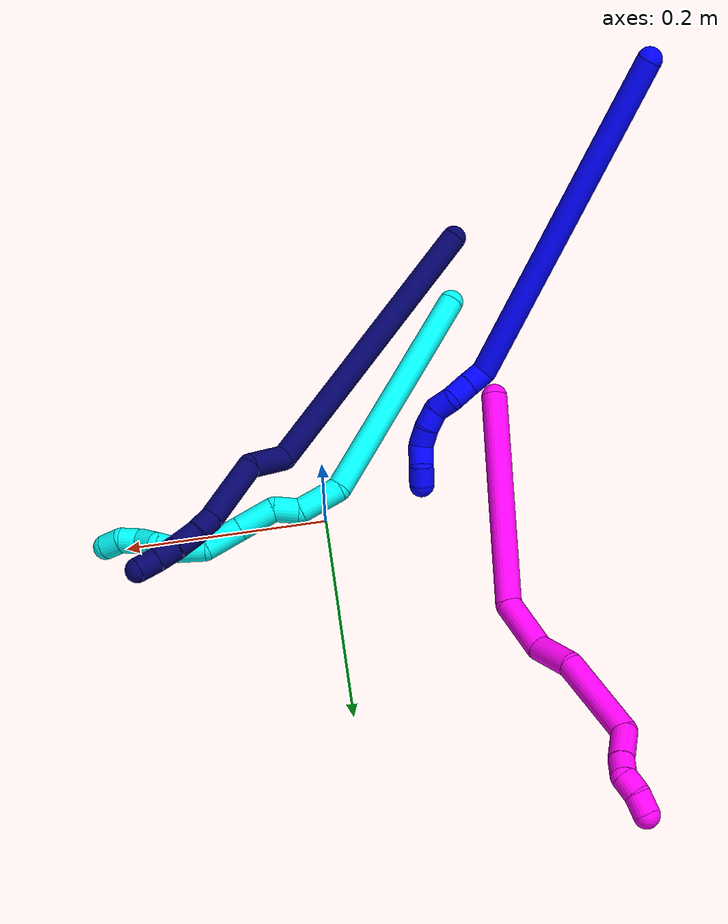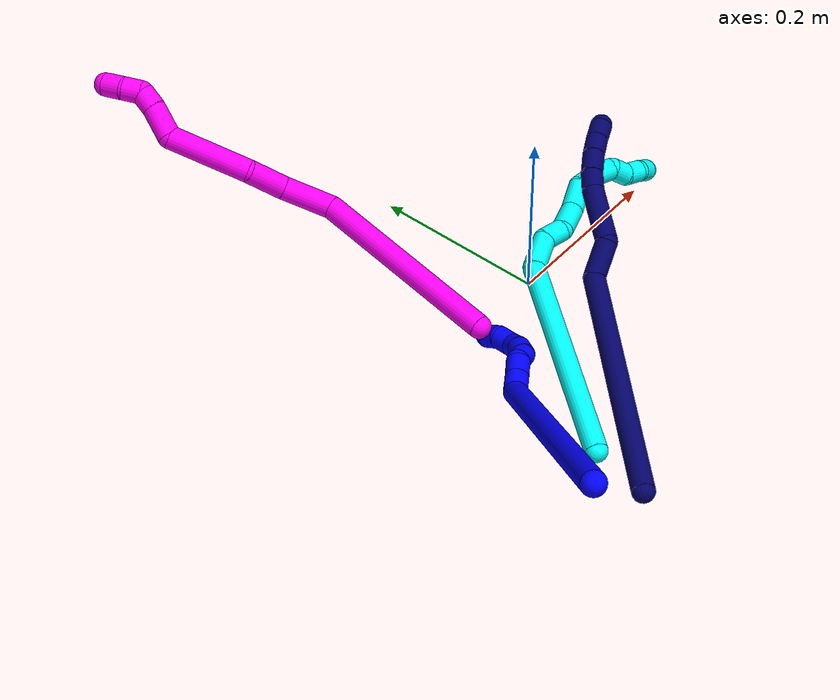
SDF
<sdf version="1.7">
 <world name="default">
  <model name="1">
   <static>0</static>
   <link name="1">
    <collision name="collision-cylinder-e_1_1_4">
     <pose>-0.014514 0.014615 -0.177175 -3.05929 -0.081458 1.56045</pose>
     <geometry><cylinder><radius>0.0125</radius><length>0.356736</length></cylinder></geometry>
     <surface>
      <friction><ode><mu>1.16</mu><mu2>1.16</mu2><slip1>0</slip1><slip2>0</slip2></ode></friction>
      <contact><ode><kp>1e+06</kp><kd>1</kd><max_vel>0</max_vel><min_depth>0.001</min_depth></ode></contact>
     </surface>
    </collision>
    <visual name="visual-cylinder-e_1_1_4">
     <pose>-0.014514 0.014615 -0.177175 -3.05929 -0.081458 1.56045</pose>
     <geometry><cylinder><radius>0.0125</radius><length>0.356736</length></cylinder></geometry>
     <material><ambient>0 0 1 1</ambient></material>
    </visual>
    <collision name="collision-cylinder-e_2_4_5">
     <pose>-0.023512 0.027339 -0.3632 2.9311 0.547267 2.42164</pose>
     <geometry><cylinder><radius>0.0125</radius><length>0.021197</length></cylinder></geometry>
     <surface>
      <friction><ode><mu>1.16</mu><mu2>1.16</mu2><slip1>0</slip1><slip2>0</slip2></ode></friction>
      <contact><ode><kp>1e+06</kp><kd>1</kd><max_vel>0</max_vel><min_depth>0.001</min_depth></ode></contact>
     </surface>
    </collision>
    <visual name="visual-cylinder-e_2_4_5">
     <pose>-0.023512 0.027339 -0.3632 2.9311 0.547267 2.42164</pose>
     <geometry><cylinder><radius>0.0125</radius><length>0.021197</length></cylinder></geometry>
     <material><ambient>0 0 1 1</ambient></material>
    </visual>
    <collision name="collision-cylinder-e_3_5_6">
     <pose>-0.012297 0.023876 -0.381154 2.97053 0.552863 2.55458</pose>
     <geometry><cylinder><radius>0.0125</radius><length>0.021708</length></cylinder></geometry>
     <surface>
      <friction><ode><mu>1.16</mu><mu2>1.16</mu2><slip1>0</slip1><slip2>0</slip2></ode></friction>
      <contact><ode><kp>1e+06</kp><kd>1</kd><max_vel>0</max_vel><min_depth>0.001</min_depth></ode></contact>
     </surface>
    </collision>
    <visual name="visual-cylinder-e_3_5_6">
     <pose>-0.012297 0.023876 -0.381154 2.97053 0.552863 2.55458</pose>
     <geometry><cylinder><radius>0.0125</radius><length>0.021708</length></cylinder></geometry>
     <material><ambient>0 0 1 1</ambient></material>
    </visual>
    <collision name="collision-cylinder-e_4_6_7">
     <pose>-0.006338 0.018581 -0.399632 2.76368 0.025743 0.134416</pose>
     <geometry><cylinder><radius>0.0125</radius><length>0.020182</length></cylinder></geometry>
     <surface>
      <friction><ode><mu>1.16</mu><mu2>1.16</mu2><slip1>0</slip1><slip2>0</slip2></ode></friction>
      <contact><ode><kp>1e+06</kp><kd>1</kd><max_vel>0</max_vel><min_depth>0.001</min_depth></ode></contact>
     </surface>
    </collision>
    <visual name="visual-cylinder-e_4_6_7">
     <pose>-0.006338 0.018581 -0.399632 2.76368 0.025743 0.134416</pose>
     <geometry><cylinder><radius>0.0125</radius><length>0.020182</length></cylinder></geometry>
     <material><ambient>0 0 1 1</ambient></material>
    </visual>
    <collision name="collision-cylinder-e_5_7_8">
     <pose>-0.005213 0.01613 -0.418948 -3.01442 0.086072 -1.18927</pose>
     <geometry><cylinder><radius>0.0125</radius><length>0.020116</length></cylinder></geometry>
     <surface>
      <friction><ode><mu>1.16</mu><mu2>1.16</mu2><slip1>0</slip1><slip2>0</slip2></ode></friction>
      <contact><ode><kp>1e+06</kp><kd>1</kd><max_vel>0</max_vel><min_depth>0.001</min_depth></ode></contact>
     </surface>
    </collision>
    <visual name="visual-cylinder-e_5_7_8">
     <pose>-0.005213 0.01613 -0.418948 -3.01442 0.086072 -1.18927</pose>
     <geometry><cylinder><radius>0.0125</radius><length>0.020116</length></cylinder></geometry>
     <material><ambient>0 0 1 1</ambient></material>
    </visual>
    <collision name="collision-cylinder-e_6_8_9">
     <pose>-0.005509 0.01983 -0.438547 -2.8952 -0.116002 0.876996</pose>
     <geometry><cylinder><radius>0.0125</radius><length>0.020055</length></cylinder></geometry>
     <surface>
      <friction><ode><mu>1.16</mu><mu2>1.16</mu2><slip1>0</slip1><slip2>0</slip2></ode></friction>
      <contact><ode><kp>1e+06</kp><kd>1</kd><max_vel>0</max_vel><min_depth>0.001</min_depth></ode></contact>
     </surface>
    </collision>
    <visual name="visual-cylinder-e_6_8_9">
     <pose>-0.005509 0.01983 -0.438547 -2.8952 -0.116002 0.876996</pose>
     <geometry><cylinder><radius>0.0125</radius><length>0.020055</length></cylinder></geometry>
     <material><ambient>0 0 1 1</ambient></material>
    </visual>
    <collision name="collision-cylinder-e_7_9_10">
     <pose>-0.004209 0.02854 -0.455591 -2.43685 0.248535 -0.654921</pose>
     <geometry><cylinder><radius>0.0125</radius><length>0.020004</length></cylinder></geometry>
     <surface>
      <friction><ode><mu>1.16</mu><mu2>1.16</mu2><slip1>0</slip1><slip2>0</slip2></ode></friction>
      <contact><ode><kp>1e+06</kp><kd>1</kd><max_vel>0</max_vel><min_depth>0.001</min_depth></ode></contact>
     </surface>
    </collision>
    <visual name="visual-cylinder-e_7_9_10">
     <pose>-0.004209 0.02854 -0.455591 -2.43685 0.248535 -0.654921</pose>
     <geometry><cylinder><radius>0.0125</radius><length>0.020004</length></cylinder></geometry>
     <material><ambient>0 0 1 1</ambient></material>
    </visual>
    <collision name="collision-cylinder-e_8_10_2">
     <pose>-0.003389 0.04017 -0.471266 -2.56852 -0.164677 0.54617</pose>
     <geometry><cylinder><radius>0.0125</radius><length>0.020001</length></cylinder></geometry>
     <surface>
      <friction><ode><mu>1.16</mu><mu2>1.16</mu2><slip1>0</slip1><slip2>0</slip2></ode></friction>
      <contact><ode><kp>1e+06</kp><kd>1</kd><max_vel>0</max_vel><min_depth>0.001</min_depth></ode></contact>
     </surface>
    </collision>
    <visual name="visual-cylinder-e_8_10_2">
     <pose>-0.003389 0.04017 -0.471266 -2.56852 -0.164677 0.54617</pose>
     <geometry><cylinder><radius>0.0125</radius><length>0.020001</length></cylinder></geometry>
     <material><ambient>0 0 1 1</ambient></material>
    </visual>
    <collision name="collision-sphere-2">
     <pose>-0.005028 0.045519 -0.479555 0 -0 0</pose>
     <geometry><sphere><radius>0.0125</radius></sphere></geometry>
     <surface>
      <friction><ode><mu>1.16</mu><mu2>1.16</mu2><slip1>0</slip1><slip2>0</slip2></ode></friction>
      <contact><ode><kp>1e+06</kp><kd>1</kd><max_vel>0</max_vel><min_depth>0.001</min_depth></ode></contact>
     </surface>
    </collision>
    <visual name="visual-sphere-2">
     <pose>-0.005028 0.045519 -0.479555 0 -0 0</pose>
     <geometry><sphere><radius>0.0125</radius></sphere></geometry>
     <material><ambient>0 0 1 1</ambient></material>
    </visual>
    <collision name="collision-sphere-10">
     <pose>-0.001749 0.034821 -0.462976 0 -0 0</pose>
     <geometry><sphere><radius>0.0125</radius></sphere></geometry>
     <surface>
      <friction><ode><mu>1.16</mu><mu2>1.16</mu2><slip1>0</slip1><slip2>0</slip2></ode></friction>
      <contact><ode><kp>1e+06</kp><kd>1</kd><max_vel>0</max_vel><min_depth>0.001</min_depth></ode></contact>
     </surface>
    </collision>
    <visual name="visual-sphere-10">
     <pose>-0.001749 0.034821 -0.462976 0 -0 0</pose>
     <geometry><sphere><radius>0.0125</radius></sphere></geometry>
     <material><ambient>0 0 1 1</ambient></material>
    </visual>
    <collision name="collision-sphere-9">
     <pose>-0.00667 0.02226 -0.448206 0 -0 0</pose>
     <geometry><sphere><radius>0.0125</radius></sphere></geometry>
     <surface>
      <friction><ode><mu>1.16</mu><mu2>1.16</mu2><slip1>0</slip1><slip2>0</slip2></ode></friction>
      <contact><ode><kp>1e+06</kp><kd>1</kd><max_vel>0</max_vel><min_depth>0.001</min_depth></ode></contact>
     </surface>
    </collision>
    <visual name="visual-sphere-9">
     <pose>-0.00667 0.02226 -0.448206 0 -0 0</pose>
     <geometry><sphere><radius>0.0125</radius></sphere></geometry>
     <material><ambient>0 0 1 1</ambient></material>
    </visual>
    <collision name="collision-sphere-4">
     <pose>-0.029027 0.02923 -0.354349 0 -0 0</pose>
     <geometry><sphere><radius>0.0125</radius></sphere></geometry>
     <surface>
      <friction><ode><mu>1.16</mu><mu2>1.16</mu2><slip1>0</slip1><slip2>0</slip2></ode></friction>
      <contact><ode><kp>1e+06</kp><kd>1</kd><max_vel>0</max_vel><min_depth>0.001</min_depth></ode></contact>
     </surface>
    </collision>
    <visual name="visual-sphere-4">
     <pose>-0.029027 0.02923 -0.354349 0 -0 0</pose>
     <geometry><sphere><radius>0.0125</radius></sphere></geometry>
     <material><ambient>0 0 1 1</ambient></material>
    </visual>
    <collision name="collision-sphere-1">
     <geometry><sphere><radius>0.0125</radius></sphere></geometry>
     <surface>
      <friction><ode><mu>1.16</mu><mu2>1.16</mu2><slip1>0</slip1><slip2>0</slip2></ode></friction>
      <contact><ode><kp>1e+06</kp><kd>1</kd><max_vel>0</max_vel><min_depth>0.001</min_depth></ode></contact>
     </surface>
    </collision>
    <visual name="visual-sphere-1">
     <geometry><sphere><radius>0.0125</radius></sphere></geometry>
     <material><ambient>0 0 1 1</ambient></material>
    </visual>
    <collision name="collision-sphere-8">
     <pose>-0.004348 0.017401 -0.428888 0 -0 0</pose>
     <geometry><sphere><radius>0.0125</radius></sphere></geometry>
     <surface>
      <friction><ode><mu>1.16</mu><mu2>1.16</mu2><slip1>0</slip1><slip2>0</slip2></ode></friction>
      <contact><ode><kp>1e+06</kp><kd>1</kd><max_vel>0</max_vel><min_depth>0.001</min_depth></ode></contact>
     </surface>
    </collision>
    <visual name="visual-sphere-8">
     <pose>-0.004348 0.017401 -0.428888 0 -0 0</pose>
     <geometry><sphere><radius>0.0125</radius></sphere></geometry>
     <material><ambient>0 0 1 1</ambient></material>
    </visual>
    <collision name="collision-sphere-5">
     <pose>-0.017997 0.025448 -0.372051 0 -0 0</pose>
     <geometry><sphere><radius>0.0125</radius></sphere></geometry>
     <surface>
      <friction><ode><mu>1.16</mu><mu2>1.16</mu2><slip1>0</slip1><slip2>0</slip2></ode></friction>
      <contact><ode><kp>1e+06</kp><kd>1</kd><max_vel>0</max_vel><min_depth>0.001</min_depth></ode></contact>
     </surface>
    </collision>
    <visual name="visual-sphere-5">
     <pose>-0.017997 0.025448 -0.372051 0 -0 0</pose>
     <geometry><sphere><radius>0.0125</radius></sphere></geometry>
     <material><ambient>0 0 1 1</ambient></material>
    </visual>
    <collision name="collision-sphere-6">
     <pose>-0.006597 0.022303 -0.390256 0 -0 0</pose>
     <geometry><sphere><radius>0.0125</radius></sphere></geometry>
     <surface>
      <friction><ode><mu>1.16</mu><mu2>1.16</mu2><slip1>0</slip1><slip2>0</slip2></ode></friction>
      <contact><ode><kp>1e+06</kp><kd>1</kd><max_vel>0</max_vel><min_depth>0.001</min_depth></ode></contact>
     </surface>
    </collision>
    <visual name="visual-sphere-6">
     <pose>-0.006597 0.022303 -0.390256 0 -0 0</pose>
     <geometry><sphere><radius>0.0125</radius></sphere></geometry>
     <material><ambient>0 0 1 1</ambient></material>
    </visual>
    <collision name="collision-sphere-7">
     <pose>-0.006078 0.014859 -0.409008 0 -0 0</pose>
     <geometry><sphere><radius>0.0125</radius></sphere></geometry>
     <surface>
      <friction><ode><mu>1.16</mu><mu2>1.16</mu2><slip1>0</slip1><slip2>0</slip2></ode></friction>
      <contact><ode><kp>1e+06</kp><kd>1</kd><max_vel>0</max_vel><min_depth>0.001</min_depth></ode></contact>
     </surface>
    </collision>
    <visual name="visual-sphere-7">
     <pose>-0.006078 0.014859 -0.409008 0 -0 0</pose>
     <geometry><sphere><radius>0.0125</radius></sphere></geometry>
     <material><ambient>0 0 1 1</ambient></material>
    </visual>
    <inertial>
     <pose>-0.012876 0.017566 -0.246011 0 -0 0</pose>
     <mass>0.5</mass>
     <inertia>
      <ixx>0.003828</ixx>
      <ixy>0</ixy>
      <ixz>0</ixz>
      <iyy>0.003774</iyy>
      <iyz>0</iyz>
      <izz>-4.3e-05</izz>
     </inertia>
    </inertial>
   </link>
   <pose>-0.366342 -0.342227 0.252897 0.05197 -1.05018 0.708383</pose>
  </model>
  <model name="3">
   <static>0</static>
   <link name="3">
    <collision name="collision-cylinder-e_1_1_4">
     <pose>0.028494 0.08128 -0.083223 -2.36801 0.24021 -0.576117</pose>
     <geometry><cylinder><radius>0.0125</radius><length>0.239537</length></cylinder></geometry>
     <surface>
      <friction><ode><mu>1.16</mu><mu2>1.16</mu2><slip1>0</slip1><slip2>0</slip2></ode></friction>
      <contact><ode><kp>1e+06</kp><kd>1</kd><max_vel>0</max_vel><min_depth>0.001</min_depth></ode></contact>
     </surface>
    </collision>
    <visual name="visual-cylinder-e_1_1_4">
     <pose>0.028494 0.08128 -0.083223 -2.36801 0.24021 -0.576117</pose>
     <geometry><cylinder><radius>0.0125</radius><length>0.239537</length></cylinder></geometry>
     <material><ambient>0.003922 1 0.996078 1</ambient></material>
    </visual>
    <collision name="collision-cylinder-e_2_4_5">
     <pose>0.068311 0.167903 -0.185135 -2.86309 0.527493 -2.18409</pose>
     <geometry><cylinder><radius>0.0125</radius><length>0.04499</length></cylinder></geometry>
     <surface>
      <friction><ode><mu>1.16</mu><mu2>1.16</mu2><slip1>0</slip1><slip2>0</slip2></ode></friction>
      <contact><ode><kp>1e+06</kp><kd>1</kd><max_vel>0</max_vel><min_depth>0.001</min_depth></ode></contact>
     </surface>
    </collision>
    <visual name="visual-cylinder-e_2_4_5">
     <pose>0.068311 0.167903 -0.185135 -2.86309 0.527493 -2.18409</pose>
     <geometry><cylinder><radius>0.0125</radius><length>0.04499</length></cylinder></geometry>
     <material><ambient>0.003922 1 0.996078 1</ambient></material>
    </visual>
    <collision name="collision-cylinder-e_3_5_6">
     <pose>0.088443 0.169227 -0.211919 2.68067 0.772524 2.09504</pose>
     <geometry><cylinder><radius>0.0125</radius><length>0.025242</length></cylinder></geometry>
     <surface>
      <friction><ode><mu>1.16</mu><mu2>1.16</mu2><slip1>0</slip1><slip2>0</slip2></ode></friction>
      <contact><ode><kp>1e+06</kp><kd>1</kd><max_vel>0</max_vel><min_depth>0.001</min_depth></ode></contact>
     </surface>
    </collision>
    <visual name="visual-cylinder-e_3_5_6">
     <pose>0.088443 0.169227 -0.211919 2.68067 0.772524 2.09504</pose>
     <geometry><cylinder><radius>0.0125</radius><length>0.025242</length></cylinder></geometry>
     <material><ambient>0.003922 1 0.996078 1</ambient></material>
    </visual>
    <collision name="collision-cylinder-e_4_6_7">
     <pose>0.104923 0.167318 -0.237907 -3.02416 0.402522 -2.58054</pose>
     <geometry><cylinder><radius>0.0125</radius><length>0.039164</length></cylinder></geometry>
     <surface>
      <friction><ode><mu>1.16</mu><mu2>1.16</mu2><slip1>0</slip1><slip2>0</slip2></ode></friction>
      <contact><ode><kp>1e+06</kp><kd>1</kd><max_vel>0</max_vel><min_depth>0.001</min_depth></ode></contact>
     </surface>
    </collision>
    <visual name="visual-cylinder-e_4_6_7">
     <pose>0.104923 0.167318 -0.237907 -3.02416 0.402522 -2.58054</pose>
     <geometry><cylinder><radius>0.0125</radius><length>0.039164</length></cylinder></geometry>
     <material><ambient>0.003922 1 0.996078 1</ambient></material>
    </visual>
    <collision name="collision-cylinder-e_5_7_8">
     <pose>0.122689 0.174693 -0.271749 -2.82276 0.541214 -2.09106</pose>
     <geometry><cylinder><radius>0.0125</radius><length>0.039192</length></cylinder></geometry>
     <surface>
      <friction><ode><mu>1.16</mu><mu2>1.16</mu2><slip1>0</slip1><slip2>0</slip2></ode></friction>
      <contact><ode><kp>1e+06</kp><kd>1</kd><max_vel>0</max_vel><min_depth>0.001</min_depth></ode></contact>
     </surface>
    </collision>
    <visual name="visual-cylinder-e_5_7_8">
     <pose>0.122689 0.174693 -0.271749 -2.82276 0.541214 -2.09106</pose>
     <geometry><cylinder><radius>0.0125</radius><length>0.039192</length></cylinder></geometry>
     <material><ambient>0.003922 1 0.996078 1</ambient></material>
    </visual>
    <collision name="collision-cylinder-e_6_8_9">
     <pose>0.141771 0.176955 -0.297695 2.84973 0.710785 2.38749</pose>
     <geometry><cylinder><radius>0.0125</radius><length>0.027547</length></cylinder></geometry>
     <surface>
      <friction><ode><mu>1.16</mu><mu2>1.16</mu2><slip1>0</slip1><slip2>0</slip2></ode></friction>
      <contact><ode><kp>1e+06</kp><kd>1</kd><max_vel>0</max_vel><min_depth>0.001</min_depth></ode></contact>
     </surface>
    </collision>
    <visual name="visual-cylinder-e_6_8_9">
     <pose>0.141771 0.176955 -0.297695 2.84973 0.710785 2.38749</pose>
     <geometry><cylinder><radius>0.0125</radius><length>0.027547</length></cylinder></geometry>
     <material><ambient>0.003922 1 0.996078 1</ambient></material>
    </visual>
    <collision name="collision-cylinder-e_7_9_10">
     <pose>0.158719 0.169394 -0.313248 2.45469 0.836598 1.78663</pose>
     <geometry><cylinder><radius>0.0125</radius><length>0.021451</length></cylinder></geometry>
     <surface>
      <friction><ode><mu>1.16</mu><mu2>1.16</mu2><slip1>0</slip1><slip2>0</slip2></ode></friction>
      <contact><ode><kp>1e+06</kp><kd>1</kd><max_vel>0</max_vel><min_depth>0.001</min_depth></ode></contact>
     </surface>
    </collision>
    <visual name="visual-cylinder-e_7_9_10">
     <pose>0.158719 0.169394 -0.313248 2.45469 0.836598 1.78663</pose>
     <geometry><cylinder><radius>0.0125</radius><length>0.021451</length></cylinder></geometry>
     <material><ambient>0.003922 1 0.996078 1</ambient></material>
    </visual>
    <collision name="collision-cylinder-e_8_10_11">
     <pose>0.168128 0.156344 -0.32602 2.27501 0.129058 0.27757</pose>
     <geometry><cylinder><radius>0.0125</radius><length>0.022475</length></cylinder></geometry>
     <surface>
      <friction><ode><mu>1.16</mu><mu2>1.16</mu2><slip1>0</slip1><slip2>0</slip2></ode></friction>
      <contact><ode><kp>1e+06</kp><kd>1</kd><max_vel>0</max_vel><min_depth>0.001</min_depth></ode></contact>
     </surface>
    </collision>
    <visual name="visual-cylinder-e_8_10_11">
     <pose>0.168128 0.156344 -0.32602 2.27501 0.129058 0.27757</pose>
     <geometry><cylinder><radius>0.0125</radius><length>0.022475</length></cylinder></geometry>
     <material><ambient>0.003922 1 0.996078 1</ambient></material>
    </visual>
    <collision name="collision-cylinder-e_9_11_12">
     <pose>0.174857 0.143334 -0.340528 2.58707 0.551939 1.56588</pose>
     <geometry><cylinder><radius>0.0125</radius><length>0.020149</length></cylinder></geometry>
     <surface>
      <friction><ode><mu>1.16</mu><mu2>1.16</mu2><slip1>0</slip1><slip2>0</slip2></ode></friction>
      <contact><ode><kp>1e+06</kp><kd>1</kd><max_vel>0</max_vel><min_depth>0.001</min_depth></ode></contact>
     </surface>
    </collision>
    <visual name="visual-cylinder-e_9_11_12">
     <pose>0.174857 0.143334 -0.340528 2.58707 0.551939 1.56588</pose>
     <geometry><cylinder><radius>0.0125</radius><length>0.020149</length></cylinder></geometry>
     <material><ambient>0.003922 1 0.996078 1</ambient></material>
    </visual>
    <collision name="collision-cylinder-e_10_12_2">
     <pose>0.181446 0.135566 -0.357322 2.81188 0.129405 0.742771</pose>
     <geometry><cylinder><radius>0.0125</radius><length>0.020252</length></cylinder></geometry>
     <surface>
      <friction><ode><mu>1.16</mu><mu2>1.16</mu2><slip1>0</slip1><slip2>0</slip2></ode></friction>
      <contact><ode><kp>1e+06</kp><kd>1</kd><max_vel>0</max_vel><min_depth>0.001</min_depth></ode></contact>
     </surface>
    </collision>
    <visual name="visual-cylinder-e_10_12_2">
     <pose>0.181446 0.135566 -0.357322 2.81188 0.129405 0.742771</pose>
     <geometry><cylinder><radius>0.0125</radius><length>0.020252</length></cylinder></geometry>
     <material><ambient>0.003922 1 0.996078 1</ambient></material>
    </visual>
    <collision name="collision-sphere-2">
     <pose>0.182753 0.132314 -0.366822 0 -0 0</pose>
     <geometry><sphere><radius>0.0125</radius></sphere></geometry>
     <surface>
      <friction><ode><mu>1.16</mu><mu2>1.16</mu2><slip1>0</slip1><slip2>0</slip2></ode></friction>
      <contact><ode><kp>1e+06</kp><kd>1</kd><max_vel>0</max_vel><min_depth>0.001</min_depth></ode></contact>
     </surface>
    </collision>
    <visual name="visual-sphere-2">
     <pose>0.182753 0.132314 -0.366822 0 -0 0</pose>
     <geometry><sphere><radius>0.0125</radius></sphere></geometry>
     <material><ambient>0.003922 1 0.996078 1</ambient></material>
    </visual>
    <collision name="collision-sphere-12">
     <pose>0.180139 0.138817 -0.347821 0 -0 0</pose>
     <geometry><sphere><radius>0.0125</radius></sphere></geometry>
     <surface>
      <friction><ode><mu>1.16</mu><mu2>1.16</mu2><slip1>0</slip1><slip2>0</slip2></ode></friction>
      <contact><ode><kp>1e+06</kp><kd>1</kd><max_vel>0</max_vel><min_depth>0.001</min_depth></ode></contact>
     </surface>
    </collision>
    <visual name="visual-sphere-12">
     <pose>0.180139 0.138817 -0.347821 0 -0 0</pose>
     <geometry><sphere><radius>0.0125</radius></sphere></geometry>
     <material><ambient>0.003922 1 0.996078 1</ambient></material>
    </visual>
    <collision name="collision-sphere-11">
     <pose>0.169574 0.147851 -0.333235 0 -0 0</pose>
     <geometry><sphere><radius>0.0125</radius></sphere></geometry>
     <surface>
      <friction><ode><mu>1.16</mu><mu2>1.16</mu2><slip1>0</slip1><slip2>0</slip2></ode></friction>
      <contact><ode><kp>1e+06</kp><kd>1</kd><max_vel>0</max_vel><min_depth>0.001</min_depth></ode></contact>
     </surface>
    </collision>
    <visual name="visual-sphere-11">
     <pose>0.169574 0.147851 -0.333235 0 -0 0</pose>
     <geometry><sphere><radius>0.0125</radius></sphere></geometry>
     <material><ambient>0.003922 1 0.996078 1</ambient></material>
    </visual>
    <collision name="collision-sphere-10">
     <pose>0.166682 0.164837 -0.318804 0 -0 0</pose>
     <geometry><sphere><radius>0.0125</radius></sphere></geometry>
     <surface>
      <friction><ode><mu>1.16</mu><mu2>1.16</mu2><slip1>0</slip1><slip2>0</slip2></ode></friction>
      <contact><ode><kp>1e+06</kp><kd>1</kd><max_vel>0</max_vel><min_depth>0.001</min_depth></ode></contact>
     </surface>
    </collision>
    <visual name="visual-sphere-10">
     <pose>0.166682 0.164837 -0.318804 0 -0 0</pose>
     <geometry><sphere><radius>0.0125</radius></sphere></geometry>
     <material><ambient>0.003922 1 0.996078 1</ambient></material>
    </visual>
    <collision name="collision-sphere-9">
     <pose>0.150757 0.173951 -0.307692 0 -0 0</pose>
     <geometry><sphere><radius>0.0125</radius></sphere></geometry>
     <surface>
      <friction><ode><mu>1.16</mu><mu2>1.16</mu2><slip1>0</slip1><slip2>0</slip2></ode></friction>
      <contact><ode><kp>1e+06</kp><kd>1</kd><max_vel>0</max_vel><min_depth>0.001</min_depth></ode></contact>
     </surface>
    </collision>
    <visual name="visual-sphere-9">
     <pose>0.150757 0.173951 -0.307692 0 -0 0</pose>
     <geometry><sphere><radius>0.0125</radius></sphere></geometry>
     <material><ambient>0.003922 1 0.996078 1</ambient></material>
    </visual>
    <collision name="collision-sphere-4">
     <pose>0.056987 0.16256 -0.166447 0 -0 0</pose>
     <geometry><sphere><radius>0.0125</radius></sphere></geometry>
     <surface>
      <friction><ode><mu>1.16</mu><mu2>1.16</mu2><slip1>0</slip1><slip2>0</slip2></ode></friction>
      <contact><ode><kp>1e+06</kp><kd>1</kd><max_vel>0</max_vel><min_depth>0.001</min_depth></ode></contact>
     </surface>
    </collision>
    <visual name="visual-sphere-4">
     <pose>0.056987 0.16256 -0.166447 0 -0 0</pose>
     <geometry><sphere><radius>0.0125</radius></sphere></geometry>
     <material><ambient>0.003922 1 0.996078 1</ambient></material>
    </visual>
    <collision name="collision-sphere-1">
     <geometry><sphere><radius>0.0125</radius></sphere></geometry>
     <surface>
      <friction><ode><mu>1.16</mu><mu2>1.16</mu2><slip1>0</slip1><slip2>0</slip2></ode></friction>
      <contact><ode><kp>1e+06</kp><kd>1</kd><max_vel>0</max_vel><min_depth>0.001</min_depth></ode></contact>
     </surface>
    </collision>
    <visual name="visual-sphere-1">
     <geometry><sphere><radius>0.0125</radius></sphere></geometry>
     <material><ambient>0.003922 1 0.996078 1</ambient></material>
    </visual>
    <collision name="collision-sphere-8">
     <pose>0.132785 0.179958 -0.287699 0 -0 0</pose>
     <geometry><sphere><radius>0.0125</radius></sphere></geometry>
     <surface>
      <friction><ode><mu>1.16</mu><mu2>1.16</mu2><slip1>0</slip1><slip2>0</slip2></ode></friction>
      <contact><ode><kp>1e+06</kp><kd>1</kd><max_vel>0</max_vel><min_depth>0.001</min_depth></ode></contact>
     </surface>
    </collision>
    <visual name="visual-sphere-8">
     <pose>0.132785 0.179958 -0.287699 0 -0 0</pose>
     <geometry><sphere><radius>0.0125</radius></sphere></geometry>
     <material><ambient>0.003922 1 0.996078 1</ambient></material>
    </visual>
    <collision name="collision-sphere-5">
     <pose>0.079634 0.173247 -0.203823 0 -0 0</pose>
     <geometry><sphere><radius>0.0125</radius></sphere></geometry>
     <surface>
      <friction><ode><mu>1.16</mu><mu2>1.16</mu2><slip1>0</slip1><slip2>0</slip2></ode></friction>
      <contact><ode><kp>1e+06</kp><kd>1</kd><max_vel>0</max_vel><min_depth>0.001</min_depth></ode></contact>
     </surface>
    </collision>
    <visual name="visual-sphere-5">
     <pose>0.079634 0.173247 -0.203823 0 -0 0</pose>
     <geometry><sphere><radius>0.0125</radius></sphere></geometry>
     <material><ambient>0.003922 1 0.996078 1</ambient></material>
    </visual>
    <collision name="collision-sphere-6">
     <pose>0.097252 0.165207 -0.220014 0 -0 0</pose>
     <geometry><sphere><radius>0.0125</radius></sphere></geometry>
     <surface>
      <friction><ode><mu>1.16</mu><mu2>1.16</mu2><slip1>0</slip1><slip2>0</slip2></ode></friction>
      <contact><ode><kp>1e+06</kp><kd>1</kd><max_vel>0</max_vel><min_depth>0.001</min_depth></ode></contact>
     </surface>
    </collision>
    <visual name="visual-sphere-6">
     <pose>0.097252 0.165207 -0.220014 0 -0 0</pose>
     <geometry><sphere><radius>0.0125</radius></sphere></geometry>
     <material><ambient>0.003922 1 0.996078 1</ambient></material>
    </visual>
    <collision name="collision-sphere-7">
     <pose>0.112594 0.169429 -0.2558 0 -0 0</pose>
     <geometry><sphere><radius>0.0125</radius></sphere></geometry>
     <surface>
      <friction><ode><mu>1.16</mu><mu2>1.16</mu2><slip1>0</slip1><slip2>0</slip2></ode></friction>
      <contact><ode><kp>1e+06</kp><kd>1</kd><max_vel>0</max_vel><min_depth>0.001</min_depth></ode></contact>
     </surface>
    </collision>
    <visual name="visual-sphere-7">
     <pose>0.112594 0.169429 -0.2558 0 -0 0</pose>
     <geometry><sphere><radius>0.0125</radius></sphere></geometry>
     <material><ambient>0.003922 1 0.996078 1</ambient></material>
    </visual>
    <inertial>
     <pose>0.078671 0.124701 -0.179854 0 -0 0</pose>
     <mass>0.5</mass>
     <inertia>
      <ixx>0.000324</ixx>
      <ixy>0</ixy>
      <ixz>0</ixz>
      <iyy>-0.001178</iyy>
      <iyz>0</iyz>
      <izz>-0.001104</izz>
     </inertia>
    </inertial>
   </link>
   <pose>-0.157382 -0.208126 0.011499 0.77842 -0.772246 -0.4527</pose>
  </model>
  <model name="7">
   <static>0</static>
   <link name="7">
    <collision name="collision-cylinder-e_1_1_4">
     <pose>0.099097 0.108038 -0.010723 -1.66972 0.739817 -0.809068</pose>
     <geometry><cylinder><radius>0.0125</radius><length>0.293989</length></cylinder></geometry>
     <surface>
      <friction><ode><mu>1.16</mu><mu2>1.16</mu2><slip1>0</slip1><slip2>0</slip2></ode></friction>
      <contact><ode><kp>1e+06</kp><kd>1</kd><max_vel>0</max_vel><min_depth>0.001</min_depth></ode></contact>
     </surface>
    </collision>
    <visual name="visual-cylinder-e_1_1_4">
     <pose>0.099097 0.108038 -0.010723 -1.66972 0.739817 -0.809068</pose>
     <geometry><cylinder><radius>0.0125</radius><length>0.293989</length></cylinder></geometry>
     <material><ambient>0.003922 0 0.403922 1</ambient></material>
    </visual>
    <collision name="collision-cylinder-e_2_4_5">
     <pose>0.207748 0.230782 -0.009015 -0.869037 0.460595 -0.216771</pose>
     <geometry><cylinder><radius>0.0125</radius><length>0.042991</length></cylinder></geometry>
     <surface>
      <friction><ode><mu>1.16</mu><mu2>1.16</mu2><slip1>0</slip1><slip2>0</slip2></ode></friction>
      <contact><ode><kp>1e+06</kp><kd>1</kd><max_vel>0</max_vel><min_depth>0.001</min_depth></ode></contact>
     </surface>
    </collision>
    <visual name="visual-cylinder-e_2_4_5">
     <pose>0.207748 0.230782 -0.009015 -0.869037 0.460595 -0.216771</pose>
     <geometry><cylinder><radius>0.0125</radius><length>0.042991</length></cylinder></geometry>
     <material><ambient>0.003922 0 0.403922 1</ambient></material>
    </visual>
    <collision name="collision-cylinder-e_3_5_6">
     <pose>0.236544 0.274749 0.002577 -1.59944 0.581507 -0.59743</pose>
     <geometry><cylinder><radius>0.0125</radius><length>0.070063</length></cylinder></geometry>
     <surface>
      <friction><ode><mu>1.16</mu><mu2>1.16</mu2><slip1>0</slip1><slip2>0</slip2></ode></friction>
      <contact><ode><kp>1e+06</kp><kd>1</kd><max_vel>0</max_vel><min_depth>0.001</min_depth></ode></contact>
     </surface>
    </collision>
    <visual name="visual-cylinder-e_3_5_6">
     <pose>0.236544 0.274749 0.002577 -1.59944 0.581507 -0.59743</pose>
     <geometry><cylinder><radius>0.0125</radius><length>0.070063</length></cylinder></geometry>
     <material><ambient>0.003922 0 0.403922 1</ambient></material>
    </visual>
    <collision name="collision-cylinder-e_4_6_7">
     <pose>0.261815 0.313126 0.003481 -1.38198 0.576113 -0.480609</pose>
     <geometry><cylinder><radius>0.0125</radius><length>0.022133</length></cylinder></geometry>
     <surface>
      <friction><ode><mu>1.16</mu><mu2>1.16</mu2><slip1>0</slip1><slip2>0</slip2></ode></friction>
      <contact><ode><kp>1e+06</kp><kd>1</kd><max_vel>0</max_vel><min_depth>0.001</min_depth></ode></contact>
     </surface>
    </collision>
    <visual name="visual-cylinder-e_4_6_7">
     <pose>0.261815 0.313126 0.003481 -1.38198 0.576113 -0.480609</pose>
     <geometry><cylinder><radius>0.0125</radius><length>0.022133</length></cylinder></geometry>
     <material><ambient>0.003922 0 0.403922 1</ambient></material>
    </visual>
    <collision name="collision-cylinder-e_5_7_8">
     <pose>0.276636 0.331603 0.007944 -1.28791 0.733812 -0.561752</pose>
     <geometry><cylinder><radius>0.0125</radius><length>0.026257</length></cylinder></geometry>
     <surface>
      <friction><ode><mu>1.16</mu><mu2>1.16</mu2><slip1>0</slip1><slip2>0</slip2></ode></friction>
      <contact><ode><kp>1e+06</kp><kd>1</kd><max_vel>0</max_vel><min_depth>0.001</min_depth></ode></contact>
     </surface>
    </collision>
    <visual name="visual-cylinder-e_5_7_8">
     <pose>0.276636 0.331603 0.007944 -1.28791 0.733812 -0.561752</pose>
     <geometry><cylinder><radius>0.0125</radius><length>0.026257</length></cylinder></geometry>
     <material><ambient>0.003922 0 0.403922 1</ambient></material>
    </visual>
    <collision name="collision-cylinder-e_6_8_9">
     <pose>0.293906 0.348286 0.013541 -1.19658 0.822863 -0.578175</pose>
     <geometry><cylinder><radius>0.0125</radius><length>0.023129</length></cylinder></geometry>
     <surface>
      <friction><ode><mu>1.16</mu><mu2>1.16</mu2><slip1>0</slip1><slip2>0</slip2></ode></friction>
      <contact><ode><kp>1e+06</kp><kd>1</kd><max_vel>0</max_vel><min_depth>0.001</min_depth></ode></contact>
     </surface>
    </collision>
    <visual name="visual-cylinder-e_6_8_9">
     <pose>0.293906 0.348286 0.013541 -1.19658 0.822863 -0.578175</pose>
     <geometry><cylinder><radius>0.0125</radius><length>0.023129</length></cylinder></geometry>
     <material><ambient>0.003922 0 0.403922 1</ambient></material>
    </visual>
    <collision name="collision-cylinder-e_7_9_2">
     <pose>0.310243 0.362105 0.019718 -1.10064 0.823007 -0.52325</pose>
     <geometry><cylinder><radius>0.0125</radius><length>0.021438</length></cylinder></geometry>
     <surface>
      <friction><ode><mu>1.16</mu><mu2>1.16</mu2><slip1>0</slip1><slip2>0</slip2></ode></friction>
      <contact><ode><kp>1e+06</kp><kd>1</kd><max_vel>0</max_vel><min_depth>0.001</min_depth></ode></contact>
     </surface>
    </collision>
    <visual name="visual-cylinder-e_7_9_2">
     <pose>0.310243 0.362105 0.019718 -1.10064 0.823007 -0.52325</pose>
     <geometry><cylinder><radius>0.0125</radius><length>0.021438</length></cylinder></geometry>
     <material><ambient>0.003922 0 0.403922 1</ambient></material>
    </visual>
    <collision name="collision-sphere-2">
     <pose>0.318103 0.368604 0.02302 0 -0 0</pose>
     <geometry><sphere><radius>0.0125</radius></sphere></geometry>
     <surface>
      <friction><ode><mu>1.16</mu><mu2>1.16</mu2><slip1>0</slip1><slip2>0</slip2></ode></friction>
      <contact><ode><kp>1e+06</kp><kd>1</kd><max_vel>0</max_vel><min_depth>0.001</min_depth></ode></contact>
     </surface>
    </collision>
    <visual name="visual-sphere-2">
     <pose>0.318103 0.368604 0.02302 0 -0 0</pose>
     <geometry><sphere><radius>0.0125</radius></sphere></geometry>
     <material><ambient>0.003922 0 0.403922 1</ambient></material>
    </visual>
    <collision name="collision-sphere-9">
     <pose>0.302384 0.355607 0.016416 0 -0 0</pose>
     <geometry><sphere><radius>0.0125</radius></sphere></geometry>
     <surface>
      <friction><ode><mu>1.16</mu><mu2>1.16</mu2><slip1>0</slip1><slip2>0</slip2></ode></friction>
      <contact><ode><kp>1e+06</kp><kd>1</kd><max_vel>0</max_vel><min_depth>0.001</min_depth></ode></contact>
     </surface>
    </collision>
    <visual name="visual-sphere-9">
     <pose>0.302384 0.355607 0.016416 0 -0 0</pose>
     <geometry><sphere><radius>0.0125</radius></sphere></geometry>
     <material><ambient>0.003922 0 0.403922 1</ambient></material>
    </visual>
    <collision name="collision-sphere-4">
     <pose>0.198194 0.216076 -0.021445 0 -0 0</pose>
     <geometry><sphere><radius>0.0125</radius></sphere></geometry>
     <surface>
      <friction><ode><mu>1.16</mu><mu2>1.16</mu2><slip1>0</slip1><slip2>0</slip2></ode></friction>
      <contact><ode><kp>1e+06</kp><kd>1</kd><max_vel>0</max_vel><min_depth>0.001</min_depth></ode></contact>
     </surface>
    </collision>
    <visual name="visual-sphere-4">
     <pose>0.198194 0.216076 -0.021445 0 -0 0</pose>
     <geometry><sphere><radius>0.0125</radius></sphere></geometry>
     <material><ambient>0.003922 0 0.403922 1</ambient></material>
    </visual>
    <collision name="collision-sphere-1">
     <geometry><sphere><radius>0.0125</radius></sphere></geometry>
     <surface>
      <friction><ode><mu>1.16</mu><mu2>1.16</mu2><slip1>0</slip1><slip2>0</slip2></ode></friction>
      <contact><ode><kp>1e+06</kp><kd>1</kd><max_vel>0</max_vel><min_depth>0.001</min_depth></ode></contact>
     </surface>
    </collision>
    <visual name="visual-sphere-1">
     <geometry><sphere><radius>0.0125</radius></sphere></geometry>
     <material><ambient>0.003922 0 0.403922 1</ambient></material>
    </visual>
    <collision name="collision-sphere-8">
     <pose>0.285429 0.340965 0.010665 0 -0 0</pose>
     <geometry><sphere><radius>0.0125</radius></sphere></geometry>
     <surface>
      <friction><ode><mu>1.16</mu><mu2>1.16</mu2><slip1>0</slip1><slip2>0</slip2></ode></friction>
      <contact><ode><kp>1e+06</kp><kd>1</kd><max_vel>0</max_vel><min_depth>0.001</min_depth></ode></contact>
     </surface>
    </collision>
    <visual name="visual-sphere-8">
     <pose>0.285429 0.340965 0.010665 0 -0 0</pose>
     <geometry><sphere><radius>0.0125</radius></sphere></geometry>
     <material><ambient>0.003922 0 0.403922 1</ambient></material>
    </visual>
    <collision name="collision-sphere-5">
     <pose>0.217302 0.245487 0.003416 0 -0 0</pose>
     <geometry><sphere><radius>0.0125</radius></sphere></geometry>
     <surface>
      <friction><ode><mu>1.16</mu><mu2>1.16</mu2><slip1>0</slip1><slip2>0</slip2></ode></friction>
      <contact><ode><kp>1e+06</kp><kd>1</kd><max_vel>0</max_vel><min_depth>0.001</min_depth></ode></contact>
     </surface>
    </collision>
    <visual name="visual-sphere-5">
     <pose>0.217302 0.245487 0.003416 0 -0 0</pose>
     <geometry><sphere><radius>0.0125</radius></sphere></geometry>
     <material><ambient>0.003922 0 0.403922 1</ambient></material>
    </visual>
    <collision name="collision-sphere-6">
     <pose>0.255787 0.30401 0.001739 0 -0 0</pose>
     <geometry><sphere><radius>0.0125</radius></sphere></geometry>
     <surface>
      <friction><ode><mu>1.16</mu><mu2>1.16</mu2><slip1>0</slip1><slip2>0</slip2></ode></friction>
      <contact><ode><kp>1e+06</kp><kd>1</kd><max_vel>0</max_vel><min_depth>0.001</min_depth></ode></contact>
     </surface>
    </collision>
    <visual name="visual-sphere-6">
     <pose>0.255787 0.30401 0.001739 0 -0 0</pose>
     <geometry><sphere><radius>0.0125</radius></sphere></geometry>
     <material><ambient>0.003922 0 0.403922 1</ambient></material>
    </visual>
    <collision name="collision-sphere-7">
     <pose>0.267844 0.322241 0.005223 0 -0 0</pose>
     <geometry><sphere><radius>0.0125</radius></sphere></geometry>
     <surface>
      <friction><ode><mu>1.16</mu><mu2>1.16</mu2><slip1>0</slip1><slip2>0</slip2></ode></friction>
      <contact><ode><kp>1e+06</kp><kd>1</kd><max_vel>0</max_vel><min_depth>0.001</min_depth></ode></contact>
     </surface>
    </collision>
    <visual name="visual-sphere-7">
     <pose>0.267844 0.322241 0.005223 0 -0 0</pose>
     <geometry><sphere><radius>0.0125</radius></sphere></geometry>
     <material><ambient>0.003922 0 0.403922 1</ambient></material>
    </visual>
    <inertial>
     <pose>0.16229 0.184778 -0.004676 0 -0 0</pose>
     <mass>0.5</mass>
     <inertia>
      <ixx>-1.3e-05</ixx>
      <ixy>0</ixy>
      <ixz>0</ixz>
      <iyy>-0.000221</iyy>
      <iyz>0</iyz>
      <izz>-0.003062</izz>
     </inertia>
    </inertial>
   </link>
   <pose>-0.170522 -0.276583 0.011497 0.788234 0.550033 0.199844</pose>
  </model>
  <model name="10">
   <static>0</static>
   <link name="10">
    <collision name="collision-cylinder-e_1_1_4">
     <pose>0.009116 0.006343 0.107554 -0.058905 0.084405 -0.002488</pose>
     <geometry><cylinder><radius>0.0125</radius><length>0.216252</length></cylinder></geometry>
     <surface>
      <friction><ode><mu>1.16</mu><mu2>1.16</mu2><slip1>0</slip1><slip2>0</slip2></ode></friction>
      <contact><ode><kp>1e+06</kp><kd>1</kd><max_vel>0</max_vel><min_depth>0.001</min_depth></ode></contact>
     </surface>
    </collision>
    <visual name="visual-cylinder-e_1_1_4">
     <pose>0.009116 0.006343 0.107554 -0.058905 0.084405 -0.002488</pose>
     <geometry><cylinder><radius>0.0125</radius><length>0.216252</length></cylinder></geometry>
     <material><ambient>1 0 0.964706 1</ambient></material>
    </visual>
    <collision name="collision-cylinder-e_2_4_5">
     <pose>0.02245 0.027464 0.237869 -0.575882 0.154223 -0.045759</pose>
     <geometry><cylinder><radius>0.0125</radius><length>0.054926</length></cylinder></geometry>
     <surface>
      <friction><ode><mu>1.16</mu><mu2>1.16</mu2><slip1>0</slip1><slip2>0</slip2></ode></friction>
      <contact><ode><kp>1e+06</kp><kd>1</kd><max_vel>0</max_vel><min_depth>0.001</min_depth></ode></contact>
     </surface>
    </collision>
    <visual name="visual-cylinder-e_2_4_5">
     <pose>0.02245 0.027464 0.237869 -0.575882 0.154223 -0.045759</pose>
     <geometry><cylinder><radius>0.0125</radius><length>0.054926</length></cylinder></geometry>
     <material><ambient>1 0 0.964706 1</ambient></material>
    </visual>
    <collision name="collision-cylinder-e_3_5_6">
     <pose>0.024461 0.059894 0.272972 -0.960567 -0.102153 0.053252</pose>
     <geometry><cylinder><radius>0.0125</radius><length>0.043303</length></cylinder></geometry>
     <surface>
      <friction><ode><mu>1.16</mu><mu2>1.16</mu2><slip1>0</slip1><slip2>0</slip2></ode></friction>
      <contact><ode><kp>1e+06</kp><kd>1</kd><max_vel>0</max_vel><min_depth>0.001</min_depth></ode></contact>
     </surface>
    </collision>
    <visual name="visual-cylinder-e_3_5_6">
     <pose>0.024461 0.059894 0.272972 -0.960567 -0.102153 0.053252</pose>
     <geometry><cylinder><radius>0.0125</radius><length>0.043303</length></cylinder></geometry>
     <material><ambient>1 0 0.964706 1</ambient></material>
    </visual>
    <collision name="collision-cylinder-e_4_6_7">
     <pose>0.026668 0.103779 0.320838 -0.636099 0.099657 -0.032834</pose>
     <geometry><cylinder><radius>0.0125</radius><length>0.08876</length></cylinder></geometry>
     <surface>
      <friction><ode><mu>1.16</mu><mu2>1.16</mu2><slip1>0</slip1><slip2>0</slip2></ode></friction>
      <contact><ode><kp>1e+06</kp><kd>1</kd><max_vel>0</max_vel><min_depth>0.001</min_depth></ode></contact>
     </surface>
    </collision>
    <visual name="visual-cylinder-e_4_6_7">
     <pose>0.026668 0.103779 0.320838 -0.636099 0.099657 -0.032834</pose>
     <geometry><cylinder><radius>0.0125</radius><length>0.08876</length></cylinder></geometry>
     <material><ambient>1 0 0.964706 1</ambient></material>
    </visual>
    <collision name="collision-cylinder-e_5_7_8">
     <pose>0.024603 0.131824 0.372638 -0.110834 -0.376806 0.021153</pose>
     <geometry><cylinder><radius>0.0125</radius><length>0.035228</length></cylinder></geometry>
     <surface>
      <friction><ode><mu>1.16</mu><mu2>1.16</mu2><slip1>0</slip1><slip2>0</slip2></ode></friction>
      <contact><ode><kp>1e+06</kp><kd>1</kd><max_vel>0</max_vel><min_depth>0.001</min_depth></ode></contact>
     </surface>
    </collision>
    <visual name="visual-cylinder-e_5_7_8">
     <pose>0.024603 0.131824 0.372638 -0.110834 -0.376806 0.021153</pose>
     <geometry><cylinder><radius>0.0125</radius><length>0.035228</length></cylinder></geometry>
     <material><ambient>1 0 0.964706 1</ambient></material>
    </visual>
    <collision name="collision-cylinder-e_6_8_9">
     <pose>0.015182 0.136395 0.398254 -0.287373 -0.293213 0.042723</pose>
     <geometry><cylinder><radius>0.0125</radius><length>0.020344</length></cylinder></geometry>
     <surface>
      <friction><ode><mu>1.16</mu><mu2>1.16</mu2><slip1>0</slip1><slip2>0</slip2></ode></friction>
      <contact><ode><kp>1e+06</kp><kd>1</kd><max_vel>0</max_vel><min_depth>0.001</min_depth></ode></contact>
     </surface>
    </collision>
    <visual name="visual-cylinder-e_6_8_9">
     <pose>0.015182 0.136395 0.398254 -0.287373 -0.293213 0.042723</pose>
     <geometry><cylinder><radius>0.0125</radius><length>0.020344</length></cylinder></geometry>
     <material><ambient>1 0 0.964706 1</ambient></material>
    </visual>
    <collision name="collision-cylinder-e_7_9_10">
     <pose>0.015533 0.144323 0.415574 -0.574635 0.333223 -0.099305</pose>
     <geometry><cylinder><radius>0.0125</radius><length>0.020123</length></cylinder></geometry>
     <surface>
      <friction><ode><mu>1.16</mu><mu2>1.16</mu2><slip1>0</slip1><slip2>0</slip2></ode></friction>
      <contact><ode><kp>1e+06</kp><kd>1</kd><max_vel>0</max_vel><min_depth>0.001</min_depth></ode></contact>
     </surface>
    </collision>
    <visual name="visual-cylinder-e_7_9_10">
     <pose>0.015533 0.144323 0.415574 -0.574635 0.333223 -0.099305</pose>
     <geometry><cylinder><radius>0.0125</radius><length>0.020123</length></cylinder></geometry>
     <material><ambient>1 0 0.964706 1</ambient></material>
    </visual>
    <collision name="collision-cylinder-e_8_10_2">
     <pose>0.023207 0.152367 0.432689 -0.305073 0.42923 -0.066993</pose>
     <geometry><cylinder><radius>0.0125</radius><length>0.021064</length></cylinder></geometry>
     <surface>
      <friction><ode><mu>1.16</mu><mu2>1.16</mu2><slip1>0</slip1><slip2>0</slip2></ode></friction>
      <contact><ode><kp>1e+06</kp><kd>1</kd><max_vel>0</max_vel><min_depth>0.001</min_depth></ode></contact>
     </surface>
    </collision>
    <visual name="visual-cylinder-e_8_10_2">
     <pose>0.023207 0.152367 0.432689 -0.305073 0.42923 -0.066993</pose>
     <geometry><cylinder><radius>0.0125</radius><length>0.021064</length></cylinder></geometry>
     <material><ambient>1 0 0.964706 1</ambient></material>
    </visual>
    <collision name="collision-sphere-2">
     <pose>0.02759 0.155244 0.441824 0 -0 0</pose>
     <geometry><sphere><radius>0.0125</radius></sphere></geometry>
     <surface>
      <friction><ode><mu>1.16</mu><mu2>1.16</mu2><slip1>0</slip1><slip2>0</slip2></ode></friction>
      <contact><ode><kp>1e+06</kp><kd>1</kd><max_vel>0</max_vel><min_depth>0.001</min_depth></ode></contact>
     </surface>
    </collision>
    <visual name="visual-sphere-2">
     <pose>0.02759 0.155244 0.441824 0 -0 0</pose>
     <geometry><sphere><radius>0.0125</radius></sphere></geometry>
     <material><ambient>1 0 0.964706 1</ambient></material>
    </visual>
    <collision name="collision-sphere-10">
     <pose>0.018824 0.149491 0.423555 0 -0 0</pose>
     <geometry><sphere><radius>0.0125</radius></sphere></geometry>
     <surface>
      <friction><ode><mu>1.16</mu><mu2>1.16</mu2><slip1>0</slip1><slip2>0</slip2></ode></friction>
      <contact><ode><kp>1e+06</kp><kd>1</kd><max_vel>0</max_vel><min_depth>0.001</min_depth></ode></contact>
     </surface>
    </collision>
    <visual name="visual-sphere-10">
     <pose>0.018824 0.149491 0.423555 0 -0 0</pose>
     <geometry><sphere><radius>0.0125</radius></sphere></geometry>
     <material><ambient>1 0 0.964706 1</ambient></material>
    </visual>
    <collision name="collision-sphere-9">
     <pose>0.012242 0.139155 0.407593 0 -0 0</pose>
     <geometry><sphere><radius>0.0125</radius></sphere></geometry>
     <surface>
      <friction><ode><mu>1.16</mu><mu2>1.16</mu2><slip1>0</slip1><slip2>0</slip2></ode></friction>
      <contact><ode><kp>1e+06</kp><kd>1</kd><max_vel>0</max_vel><min_depth>0.001</min_depth></ode></contact>
     </surface>
    </collision>
    <visual name="visual-sphere-9">
     <pose>0.012242 0.139155 0.407593 0 -0 0</pose>
     <geometry><sphere><radius>0.0125</radius></sphere></geometry>
     <material><ambient>1 0 0.964706 1</ambient></material>
    </visual>
    <collision name="collision-sphere-4">
     <pose>0.018231 0.012686 0.215109 0 -0 0</pose>
     <geometry><sphere><radius>0.0125</radius></sphere></geometry>
     <surface>
      <friction><ode><mu>1.16</mu><mu2>1.16</mu2><slip1>0</slip1><slip2>0</slip2></ode></friction>
      <contact><ode><kp>1e+06</kp><kd>1</kd><max_vel>0</max_vel><min_depth>0.001</min_depth></ode></contact>
     </surface>
    </collision>
    <visual name="visual-sphere-4">
     <pose>0.018231 0.012686 0.215109 0 -0 0</pose>
     <geometry><sphere><radius>0.0125</radius></sphere></geometry>
     <material><ambient>1 0 0.964706 1</ambient></material>
    </visual>
    <collision name="collision-sphere-1">
     <geometry><sphere><radius>0.0125</radius></sphere></geometry>
     <surface>
      <friction><ode><mu>1.16</mu><mu2>1.16</mu2><slip1>0</slip1><slip2>0</slip2></ode></friction>
      <contact><ode><kp>1e+06</kp><kd>1</kd><max_vel>0</max_vel><min_depth>0.001</min_depth></ode></contact>
     </surface>
    </collision>
    <visual name="visual-sphere-1">
     <geometry><sphere><radius>0.0125</radius></sphere></geometry>
     <material><ambient>1 0 0.964706 1</ambient></material>
    </visual>
    <collision name="collision-sphere-8">
     <pose>0.018121 0.133635 0.388916 0 -0 0</pose>
     <geometry><sphere><radius>0.0125</radius></sphere></geometry>
     <surface>
      <friction><ode><mu>1.16</mu><mu2>1.16</mu2><slip1>0</slip1><slip2>0</slip2></ode></friction>
      <contact><ode><kp>1e+06</kp><kd>1</kd><max_vel>0</max_vel><min_depth>0.001</min_depth></ode></contact>
     </surface>
    </collision>
    <visual name="visual-sphere-8">
     <pose>0.018121 0.133635 0.388916 0 -0 0</pose>
     <geometry><sphere><radius>0.0125</radius></sphere></geometry>
     <material><ambient>1 0 0.964706 1</ambient></material>
    </visual>
    <collision name="collision-sphere-5">
     <pose>0.026669 0.042242 0.260629 0 -0 0</pose>
     <geometry><sphere><radius>0.0125</radius></sphere></geometry>
     <surface>
      <friction><ode><mu>1.16</mu><mu2>1.16</mu2><slip1>0</slip1><slip2>0</slip2></ode></friction>
      <contact><ode><kp>1e+06</kp><kd>1</kd><max_vel>0</max_vel><min_depth>0.001</min_depth></ode></contact>
     </surface>
    </collision>
    <visual name="visual-sphere-5">
     <pose>0.026669 0.042242 0.260629 0 -0 0</pose>
     <geometry><sphere><radius>0.0125</radius></sphere></geometry>
     <material><ambient>1 0 0.964706 1</ambient></material>
    </visual>
    <collision name="collision-sphere-6">
     <pose>0.022253 0.077545 0.285315 0 -0 0</pose>
     <geometry><sphere><radius>0.0125</radius></sphere></geometry>
     <surface>
      <friction><ode><mu>1.16</mu><mu2>1.16</mu2><slip1>0</slip1><slip2>0</slip2></ode></friction>
      <contact><ode><kp>1e+06</kp><kd>1</kd><max_vel>0</max_vel><min_depth>0.001</min_depth></ode></contact>
     </surface>
    </collision>
    <visual name="visual-sphere-6">
     <pose>0.022253 0.077545 0.285315 0 -0 0</pose>
     <geometry><sphere><radius>0.0125</radius></sphere></geometry>
     <material><ambient>1 0 0.964706 1</ambient></material>
    </visual>
    <collision name="collision-sphere-7">
     <pose>0.031084 0.130012 0.356361 0 -0 0</pose>
     <geometry><sphere><radius>0.0125</radius></sphere></geometry>
     <surface>
      <friction><ode><mu>1.16</mu><mu2>1.16</mu2><slip1>0</slip1><slip2>0</slip2></ode></friction>
      <contact><ode><kp>1e+06</kp><kd>1</kd><max_vel>0</max_vel><min_depth>0.001</min_depth></ode></contact>
     </surface>
    </collision>
    <visual name="visual-sphere-7">
     <pose>0.031084 0.130012 0.356361 0 -0 0</pose>
     <geometry><sphere><radius>0.0125</radius></sphere></geometry>
     <material><ambient>1 0 0.964706 1</ambient></material>
    </visual>
    <inertial>
     <pose>0.017215 0.056435 0.230656 0 -0 0</pose>
     <mass>0.5</mass>
     <inertia>
      <ixx>0.00094</ixx>
      <ixy>0</ixy>
      <ixz>0</ixz>
      <iyy>0.000935</iyy>
      <iyz>0</iyz>
      <izz>-0.000148</izz>
     </inertia>
    </inertial>
   </link>
   <pose>-0.177269 -0.069076 0.118041 1.26933 1.02263 2.69561</pose>
  </model>
 </world>
</sdf>
